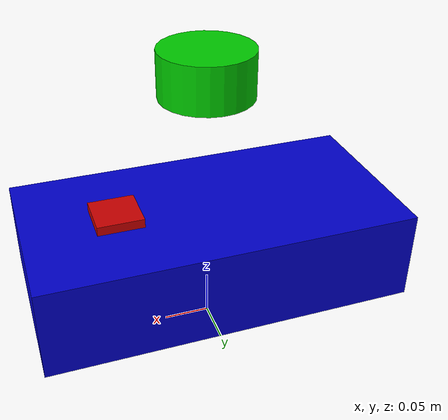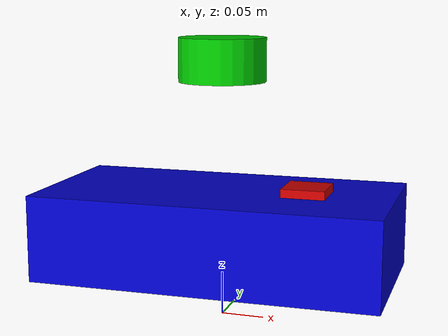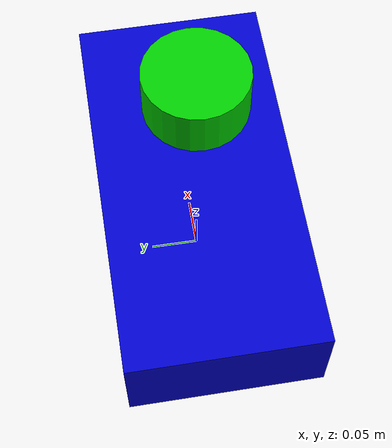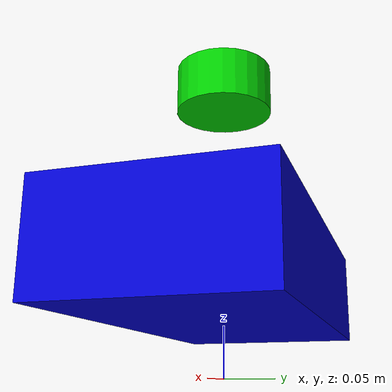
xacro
<?xml version="1.0"?>
<robot xmlns:xacro="http://www.ros.org/wiki/xacro" name="rc_car">

    <link name="base_footprint"/>

    <link name="base_link">
        <visual>
            <origin xyz="0 0 0" rpy="0 0 0"/>
            <geometry>
                <box size="0.4 0.2 0.1"/>
            </geometry>
            <material name="blue">
                <color rgba="0.0 0.0 0.8 1.0"/>
            </material>
        </visual>
    </link>

    <link name="imu_link">
        <visual>
            <geometry>
                <box size="0.05 0.05 0.02"/>
            </geometry>
            <material name="red">
                <color rgba="0.8 0.0 0.0 1.0"/>
            </material>
        </visual>
    </link>

    <link name="lidar_link">
        <visual>
            <geometry>
                <cylinder radius="0.05" length="0.05"/>
            </geometry>
            <material name="green">
                <color rgba="0.0 0.8 0.0 1.0"/>
            </material>
        </visual>
    </link>

    <joint name="base_footprint_to_base_link" type="fixed">
        <parent link="base_footprint"/>
        <child link="base_link"/>
        <origin xyz="0 0 0.1" rpy="0 0 0"/>
    </joint>

    <joint name="base_link_to_imu_link" type="fixed">
        <parent link="base_link"/>
        <child link="imu_link"/>
        <origin xyz="0.1 0 0.05" rpy="0 3.1416 -1.57"/>
    </joint>

    <joint name="base_link_to_lidar_link" type="fixed">
        <parent link="base_link"/>
        <child link="lidar_link"/>
        <origin xyz="0 0 0.2" rpy="0 0 3.14"/>
    </joint>

</robot>
